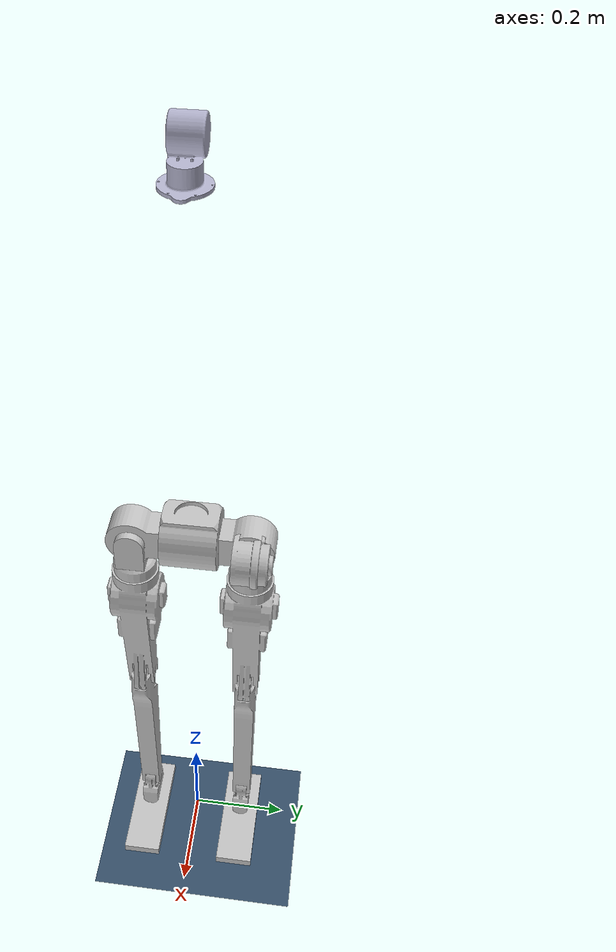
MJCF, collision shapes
<mujoco model="F2">
  <compiler angle="radian" meshdir="./meshes/"/>

  <asset>
    <mesh name="pelvis" file="pelvis.STL"/>
    <mesh name="left_hip_pitch_link" file="left_hip_pitch_link.STL"/>
    <mesh name="left_hip_roll_link" file="left_hip_roll_link.STL"/>
    <mesh name="left_hip_yaw_link" file="left_hip_yaw_link.STL"/>
    <mesh name="left_knee_link" file="left_knee_link.STL"/>
    <mesh name="left_ankle_pitch_link" file="left_ankle_pitch_link.STL"/>
    <mesh name="left_ankle_roll_link" file="left_ankle_roll_link.STL"/>
    <mesh name="right_hip_pitch_link" file="right_hip_pitch_link.STL"/>
    <mesh name="right_hip_roll_link" file="right_hip_roll_link.STL"/>
    <mesh name="right_hip_yaw_link" file="right_hip_yaw_link.STL"/>
    <mesh name="right_knee_link" file="right_knee_link.STL"/>
    <mesh name="right_ankle_pitch_link" file="right_ankle_pitch_link.STL"/>
    <mesh name="right_ankle_roll_link" file="right_ankle_roll_link.STL"/>
    <mesh name="waist_yaw_link" file="waist_yaw_link.STL"/>
    <mesh name="waist_roll_link" file="waist_roll_link.STL"/>
    <mesh name="torso_link" file="torso_link.STL"/>
    <mesh name="left_shoulder_pitch_link" file="left_shoulder_pitch_link.STL"/>
    <mesh name="left_shoulder_roll_link" file="left_shoulder_roll_link.STL"/>
    <mesh name="left_shoulder_yaw_link" file="left_shoulder_yaw_link.STL"/>
    <mesh name="left_elbow_link" file="left_elbow_link.STL"/>
    <mesh name="left_wrist_roll_link" file="left_wrist_roll_link.STL"/>
    <mesh name="left_wrist_pitch_link" file="left_wrist_pitch_link.STL"/>
    <mesh name="left_wrist_yaw_link" file="left_wrist_yaw_link.STL"/>
    <mesh name="left_hand_link" file="left_hand_link.STL"/>
    <mesh name="right_shoulder_pitch_link" file="right_shoulder_pitch_link.STL"/>
    <mesh name="right_shoulder_roll_link" file="right_shoulder_roll_link.STL"/>
    <mesh name="right_shoulder_yaw_link" file="right_shoulder_yaw_link.STL"/>
    <mesh name="right_elbow_link" file="right_elbow_link.STL"/>
    <mesh name="right_wrist_roll_link" file="right_wrist_roll_link.STL"/>
    <mesh name="right_wrist_pitch_link" file="right_wrist_pitch_link.STL"/>
    <mesh name="right_wrist_yaw_link" file="right_wrist_yaw_link.STL"/>
    <mesh name="right_hand_link" file="right_hand_link.STL"/>
    <mesh name="head_yaw_link" file="head_yaw_link.STL"/>
    <mesh name="head_pitch_link" file="head_pitch_link.STL"/>
  </asset>

  <worldbody>
    <body name="pelvis" pos="0 0 0.873">
      <inertial pos="1.227e-05 0 0.00175202" quat="0.707113 0.707071 -0.00603929 0.00224665" mass="1.923" diaginertia="0.00328643 0.00327877 0.00187875"/>
      <joint name="floating_base_joint" type="free" limited="false" actuatorfrclimited="false"/>
      <geom type="mesh" contype="0" conaffinity="0" group="1" density="0" rgba="0.75294 0.75294 0.75294 1" mesh="pelvis"/>
      <geom type="mesh" rgba="0.75294 0.75294 0.75294 1" mesh="pelvis"/>
      <body name="left_hip_pitch_link" pos="0 0.0495 0">
        <inertial pos="-0.00059823 0.053979 -0.0042224" quat="0.652315 0.75755 -0.0242065 0.00423816" mass="1.04" diaginertia="0.00138575 0.00113626 0.000872142"/>
        <joint name="left_hip_pitch_joint" pos="0 0 0" axis="0 1 0" range="-2.3562 2.3562" actuatorfrcrange="-75 75"/>
        <geom type="mesh" contype="0" conaffinity="0" group="1" density="0" rgba="0.75294 0.75294 0.75294 1" mesh="left_hip_pitch_link"/>
        <geom type="mesh" rgba="0.75294 0.75294 0.75294 1" mesh="left_hip_pitch_link"/>
        <body name="left_hip_roll_link" pos="0 0.0555 -0.005">
          <inertial pos="0.0043213 0 -0.027634" quat="0.408553 0.57731 0.577033 0.408449" mass="0.14" diaginertia="0.00018358 0.000141244 0.000101956"/>
          <joint name="left_hip_roll_joint" pos="0 0 0" axis="1 0 0" range="-0.5236 1.5708" actuatorfrcrange="-87 87"/>
          <geom type="mesh" contype="0" conaffinity="0" group="1" density="0" rgba="0.75294 0.75294 0.75294 1" mesh="left_hip_roll_link"/>
          <geom type="mesh" rgba="0.75294 0.75294 0.75294 1" mesh="left_hip_roll_link"/>
          <body name="left_hip_yaw_link" pos="0 0 -0.0536">
            <inertial pos="0.00010121 1.383e-05 -0.102311" quat="0.99999 0.00375205 0.0025479 0.000511966" mass="2.275" diaginertia="0.0191971 0.018658 0.00224713"/>
            <joint name="left_hip_yaw_joint" pos="0 0 0" axis="0 0 1" range="-1.8326 1.8326" actuatorfrcrange="-87 87"/>
            <geom type="mesh" contype="0" conaffinity="0" group="1" density="0" rgba="0.75294 0.75294 0.75294 1" mesh="left_hip_yaw_link"/>
            <geom type="mesh" rgba="0.75294 0.75294 0.75294 1" mesh="left_hip_yaw_link"/>
            <body name="left_knee_link" pos="0 0 -0.3304">
              <inertial pos="0.00334882 -0.00032247 -0.149842" quat="0.698241 -0.0104039 -0.00666549 0.715757" mass="0.635" diaginertia="0.0111018 0.0110139 0.000311373"/>
              <joint name="left_knee_joint" pos="0 0 0" axis="0 1 0" range="-0.01745 2.3562" actuatorfrcrange="-120 120"/>
              <geom type="mesh" contype="0" conaffinity="0" group="1" density="0" rgba="0.75294 0.75294 0.75294 1" mesh="left_knee_link"/>
              <geom type="mesh" rgba="0.75294 0.75294 0.75294 1" mesh="left_knee_link"/>
              <body name="left_ankle_pitch_link" pos="0 0 -0.39">
                <inertial pos="0.0024178 -1.256e-05 -0.0238176" quat="0.704903 0.052882 0.0527757 0.705358" mass="0.22" diaginertia="0.00023561 0.000170507 9.99229e-05"/>
                <joint name="left_ankle_pitch_joint" pos="0 0 0" axis="0 1 0" range="-0.873 1.0472" actuatorfrcrange="-89 89"/>
                <geom type="mesh" contype="0" conaffinity="0" group="1" density="0" rgba="0.75294 0.75294 0.75294 1" mesh="left_ankle_pitch_link"/>
                <geom type="mesh" rgba="0.75294 0.75294 0.75294 1" mesh="left_ankle_pitch_link"/>
                <body name="left_ankle_roll_link" pos="0 0 -0.058">
                  <inertial pos="0.0510876 0.00023922 -0.00447269" quat="1 0 0 0" mass="0.411" diaginertia="0.01 0.01 0.01"/>
                  <joint name="left_ankle_roll_joint" pos="0 0 0" axis="1 0 0" range="-0.5236 0.5236" actuatorfrcrange="-12 12"/>
                  <geom type="mesh" contype="0" conaffinity="0" group="1" density="0" rgba="0.75294 0.75294 0.75294 1" mesh="left_ankle_roll_link"/>
                  <geom name="l_foot_collision" type="box" size="0.115 0.039 0.01" pos="0.038 0 -0.025" rgba="0.75294 0.75294 0.75294 1" condim="3" />
                </body>
              </body>
            </body>
          </body>
        </body>
      </body>
      <body name="right_hip_pitch_link" pos="0 -0.0495 0">
        <inertial pos="-0.00059823 -0.053979 -0.0042224" quat="0.75755 0.652315 -0.00423816 0.0242065" mass="1.04" diaginertia="0.00138575 0.00113626 0.000872142"/>
        <joint name="right_hip_pitch_joint" pos="0 0 0" axis="0 1 0" range="-2.3562 2.3562" actuatorfrcrange="-75 75"/>
        <geom type="mesh" contype="0" conaffinity="0" group="1" density="0" rgba="0.75294 0.75294 0.75294 1" mesh="right_hip_pitch_link"/>
        <geom type="mesh" rgba="0.75294 0.75294 0.75294 1" mesh="right_hip_pitch_link"/>
        <body name="right_hip_roll_link" pos="0 -0.0555 -0.005">
          <inertial pos="0.0043213 0 -0.027634" quat="0.408553 0.57731 0.577033 0.408449" mass="0.14" diaginertia="0.00018358 0.000141244 0.000101956"/>
          <joint name="right_hip_roll_joint" pos="0 0 0" axis="1 0 0" range="-1.5708 0.5236" actuatorfrcrange="-87 87"/>
          <geom type="mesh" contype="0" conaffinity="0" group="1" density="0" rgba="0.75294 0.75294 0.75294 1" mesh="right_hip_roll_link"/>
          <geom type="mesh" rgba="0.75294 0.75294 0.75294 1" mesh="right_hip_roll_link"/>
          <body name="right_hip_yaw_link" pos="0 0 -0.0536">
            <inertial pos="0.00028095 -0.00037298 -0.102311" quat="0.999997 0.00155532 0.00134116 0.00120674" mass="2.275" diaginertia="0.0191961 0.0186572 0.00224772"/>
            <joint name="right_hip_yaw_joint" pos="0 0 0" axis="0 0 1" range="-1.8326 1.8326" actuatorfrcrange="-87 87"/>
            <geom type="mesh" contype="0" conaffinity="0" group="1" density="0" rgba="0.75294 0.75294 0.75294 1" mesh="right_hip_yaw_link"/>
            <geom type="mesh" rgba="0.75294 0.75294 0.75294 1" mesh="right_hip_yaw_link"/>
            <body name="right_knee_link" pos="0 0 -0.3304">
              <inertial pos="0.0033489 -0.00032248 -0.14984" quat="0.715839 -0.00666391 -0.0104045 0.698156" mass="0.635" diaginertia="0.0111013 0.0110142 0.000311373"/>
              <joint name="right_knee_joint" pos="0 0 0" axis="0 1 0" range="-0.01745 2.3562" actuatorfrcrange="-120 120"/>
              <geom type="mesh" contype="0" conaffinity="0" group="1" density="0" rgba="0.75294 0.75294 0.75294 1" mesh="right_knee_link"/>
              <geom type="mesh" rgba="0.75294 0.75294 0.75294 1" mesh="right_knee_link"/>
              <body name="right_ankle_pitch_link" pos="0 0 -0.39">
                <inertial pos="0.0024178 -1.257e-05 -0.023818" quat="0.704903 0.052882 0.0527757 0.705358" mass="0.22" diaginertia="0.00023561 0.000170507 9.99229e-05"/>
                <joint name="right_ankle_pitch_joint" pos="0 0 0" axis="0 1 0" range="-0.873 1.0472" actuatorfrcrange="-89 89"/>
                <geom type="mesh" contype="0" conaffinity="0" group="1" density="0" rgba="0.75294 0.75294 0.75294 1" mesh="right_ankle_pitch_link"/>
                <geom type="mesh" rgba="0.75294 0.75294 0.75294 1" mesh="right_ankle_pitch_link"/>
                <body name="right_ankle_roll_link" pos="0 0 -0.058">
                  <inertial pos="0.0490176 4.088e-05 -0.00448631" quat="1 0 0 0" mass="0.411" diaginertia="0.01 0.01 0.01"/>
                  <joint name="right_ankle_roll_joint" pos="0 0 0" axis="1 0 0" range="-0.5236 0.5236" actuatorfrcrange="-12 12"/>
                  <geom type="mesh" contype="0" conaffinity="0" group="1" density="0" rgba="0.75294 0.75294 0.75294 1" mesh="right_ankle_roll_link"/>
                  <geom name="r_foot_collision" type="box" size="0.115 0.039 0.01" pos="0.038 0 -0.025" rgba="0.75294 0.75294 0.75294 1" condim="3" />
                </body>
              </body>
            </body>
          </body>
        </body>
      </body>
      <body name="waist_yaw_link" pos="0 0 0.0955">
        <inertial pos="-0.000168719 0 0.00494718" quat="0.705214 0.0517024 0.0517024 0.705214" mass="0.274" diaginertia="0.000141864 0.000115748 0.00010802"/>
        <joint name="waist_yaw_joint" pos="0 0 0" axis="0 0 1" range="-1.5708 1.5708" actuatorfrcrange="-87 87"/>
        <geom type="mesh" contype="0" conaffinity="0" group="1" density="0" rgba="1 1 1 1" mesh="waist_yaw_link"/>
        <geom type="mesh" contype="0" conaffinity="0" group="1" density="0" rgba="1 1 1 1" mesh="waist_roll_link"/>
        <body name="torso_link">
          <inertial pos="0.0294011 0.000755467 0.198523" quat="0.968186 -0.00506918 -0.25018 0.000512508" mass="17.267" diaginertia="0.469654 0.357006 0.340049"/>
          <joint name="waist_roll_joint" pos="0 0 0" axis="1 0 0" range="-0.5236 0.5236" actuatorfrcrange="-87 87"/>
          <geom type="mesh" contype="0" conaffinity="0" group="1" density="0" rgba="0.5 0 0 1" mesh="torso_link"/>
          <geom pos="-0.015 0.05635 0.342" quat="1 0 0 0" type="mesh" contype="0" conaffinity="0" group="1" density="0" rgba="0.75294 0.75294 0.75294 1" mesh="left_shoulder_pitch_link"/>
          <geom pos="-0.015 0.15945 0.342" type="mesh" contype="0" conaffinity="0" group="1" density="0" rgba="0.75294 0.75294 0.75294 1" mesh="left_shoulder_roll_link"/>
          <geom pos="-0.015 0.15945 0.342" type="mesh" contype="0" conaffinity="0" group="1" density="0" rgba="0.75294 0.75294 0.75294 1" mesh="left_shoulder_yaw_link"/>
          <geom pos="-0.015 0.15945 0.1125" quat="1 0 0 0" type="mesh" contype="0" conaffinity="0" group="1" density="0" rgba="0.75294 0.75294 0.75294 1" mesh="left_elbow_link"/>
          <geom pos="-0.015 0.15945 0.1125" quat="1 0 0 0" type="mesh" contype="0" conaffinity="0" group="1" density="0" rgba="0.75294 0.75294 0.75294 1" mesh="left_wrist_roll_link"/>
          <geom pos="0.215 0.15945 0.1125" quat="1 0 0 0" type="mesh" contype="0" conaffinity="0" group="1" density="0" rgba="0.75294 0.75294 0.75294 1" mesh="left_wrist_pitch_link"/>
          <geom pos="0.236 0.15945 0.1125" quat="1 0 0 0" type="mesh" contype="0" conaffinity="0" group="1" density="0" rgba="0.75294 0.75294 0.75294 1" mesh="left_wrist_yaw_link"/>
          <geom pos="0.267 0.15945 0.1125" quat="1 0 0 0" type="mesh" contype="0" conaffinity="0" group="1" density="0" rgba="1 1 1 1" mesh="left_hand_link"/>
          <geom pos="-0.015 -0.05635 0.342" quat="1 0 0 0" type="mesh" contype="0" conaffinity="0" group="1" density="0" rgba="0.75294 0.75294 0.75294 1" mesh="right_shoulder_pitch_link"/>
          <geom pos="-0.015 -0.15945 0.342" type="mesh" contype="0" conaffinity="0" group="1" density="0" rgba="0.75294 0.75294 0.75294 1" mesh="right_shoulder_roll_link"/>
          <geom pos="-0.015 -0.15945 0.342" type="mesh" contype="0" conaffinity="0" group="1" density="0" rgba="0.75294 0.75294 0.75294 1" mesh="right_shoulder_yaw_link"/>
          <geom pos="-0.015 -0.15945 0.1125" quat="1 0 0 0" type="mesh" contype="0" conaffinity="0" group="1" density="0" rgba="0.75294 0.75294 0.75294 1" mesh="right_elbow_link"/>
          <geom pos="-0.015 -0.15945 0.1125" quat="1 0 0 0" type="mesh" contype="0" conaffinity="0" group="1" density="0" rgba="0.75294 0.75294 0.75294 1" mesh="right_wrist_roll_link"/>
          <geom pos="0.215 -0.15945 0.1125" quat="1 0 0 0" type="mesh" contype="0" conaffinity="0" group="1" density="0" rgba="0.75294 0.75294 0.75294 1" mesh="right_wrist_pitch_link"/>
          <geom pos="0.236 -0.15945 0.1125" quat="1 0 0 0" type="mesh" contype="0" conaffinity="0" group="1" density="0" rgba="0.75294 0.75294 0.75294 1" mesh="right_wrist_yaw_link"/>
          <geom pos="0.267 -0.15945 0.1125" quat="1 0 0 0" type="mesh" contype="0" conaffinity="0" group="1" density="0" rgba="1 1 1 1" mesh="right_hand_link"/>
          <geom pos="-0.011 0 0.5218" type="mesh" contype="0" conaffinity="0" group="1" density="0" rgba="0.7 0.7 0.8 1" mesh="head_yaw_link"/>
          <geom pos="-0.011 0 0.5218" type="mesh" rgba="0.7 0.7 0.8 1" mesh="head_yaw_link"/>
          <geom pos="-0.0405 0 0.5721" quat="1 0 0 0" type="mesh" contype="0" conaffinity="0" group="1" density="0" rgba="0.7 0.7 0.76 1" mesh="head_pitch_link"/>
        </body>
      </body>
    </body>
  </worldbody>
  <actuator>
    <motor name="left_hip_pitch_joint" joint="left_hip_pitch_joint"/>
    <motor name="left_hip_roll_joint" joint="left_hip_roll_joint"/>
    <motor name="left_hip_yaw_joint" joint="left_hip_yaw_joint"/>
    <motor name="left_knee_joint" joint="left_knee_joint"/>
    <motor name="left_ankle_pitch_joint" joint="left_ankle_pitch_joint"/>
    <motor name="left_ankle_roll_joint" joint="left_ankle_roll_joint"/>

    <motor name="right_hip_pitch_joint" joint="right_hip_pitch_joint"/>
    <motor name="right_hip_roll_joint" joint="right_hip_roll_joint"/>
    <motor name="right_hip_yaw_joint" joint="right_hip_yaw_joint"/>
    <motor name="right_knee_joint" joint="right_knee_joint"/>
    <motor name="right_ankle_pitch_joint" joint="right_ankle_pitch_joint"/>
    <motor name="right_ankle_roll_joint" joint="right_ankle_roll_joint"/>

    <motor name="waist_roll_joint" joint="waist_roll_joint"/>
    <motor name="waist_yaw_joint" joint="waist_yaw_joint"/>
  </actuator>
  <visual>
    <headlight diffuse="0.6 0.6 0.6" ambient="0.1 0.1 0.1" specular="0.9 0.9 0.9"/>
    <rgba haze="0.15 0.25 0.35 1"/>
    <global azimuth="-140" elevation="-20"/>
  </visual>

  <asset>
    <texture type="skybox" builtin="gradient" rgb1="0 0 0" rgb2="0 0 0" width="800" height="800"/>
    <texture type="2d" name="plane" builtin="checker" mark="edge" rgb1="0.3 0.4 0.5" rgb2="0.1 0.2 0.3" markrgb="0.8 0.8 0.8" width="300" height="300"/>
    <material name="plane" texture="plane" texuniform="true" texrepeat="2 2" reflectance="0.0"/>
  </asset>

  <worldbody>
    <light mode="trackcom" pos="1 0 3.5" dir="0 0 -1" directional="true"/>
    <geom name="floor" size="0 0 0.05" type="plane" material="plane" friction="1.0" />
  </worldbody>
</mujoco>
